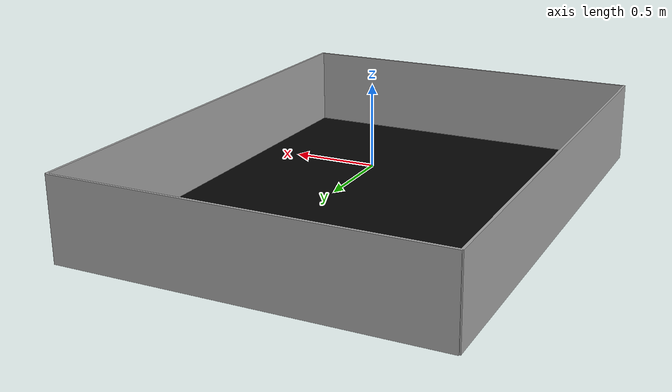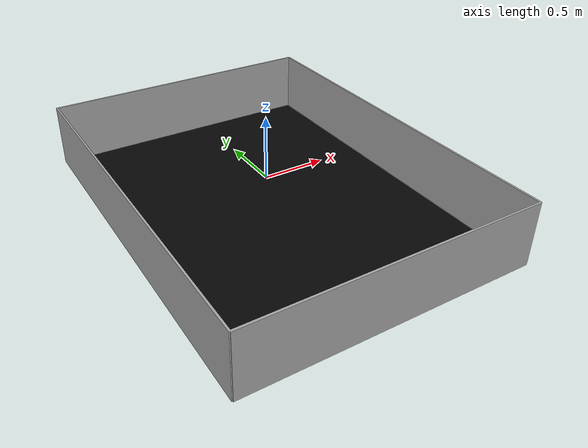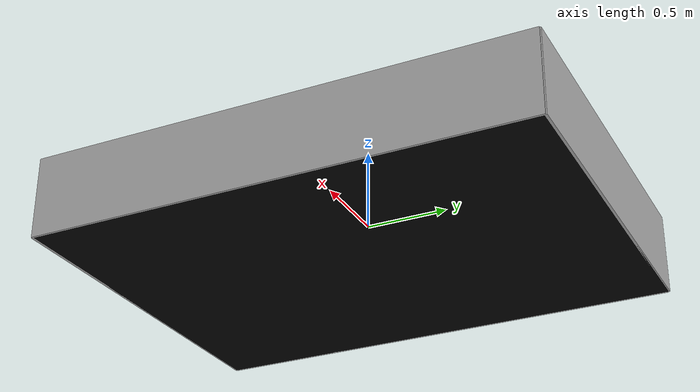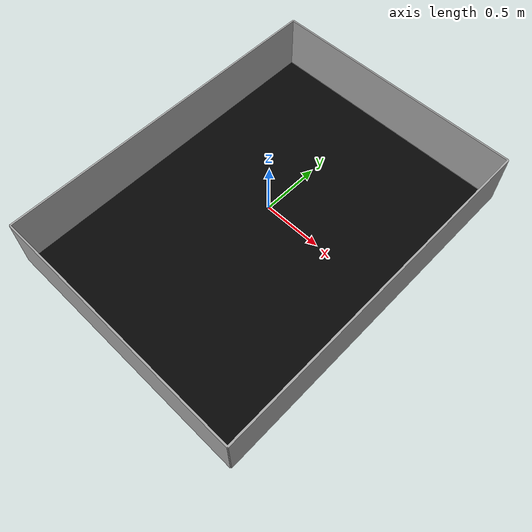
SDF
<?xml version="1.0" ?>
<sdf version='1.4'>
  <model name="fetchit_simple_env">
      <static>1</static>
      <link name='link'>
        <visual name='visual'>
          <geometry>
            <mesh>
              <uri>model://nec0115a_arena/meshes/nec0115a_arena.dae</uri>
              <scale>1 1 1</scale>
            </mesh>
          </geometry>
        </visual>
        <collision name='collision'>
          <geometry>
            <mesh>
              <uri>model://nec0115a_arena/meshes/nec0115a_arena.dae</uri>
              <scale>1 1 1</scale>
            </mesh>
          </geometry>
          <surface>
            <friction>
              <ode>
                <mu>30.0</mu>
                <mu2>30.0</mu2>
              </ode>
            </friction>
            <contact>
              <ode>
                <soft_cfm>0</soft_cfm>
    	          <soft_erp>0.2</soft_erp>
    	          <kp>1e+13</kp>
    	          <kd>1</kd>
    	          <max_vel>0.01</max_vel>
    	          <min_depth>0</min_depth>
              </ode>
            </contact>
          </surface>
        </collision>
        <velocity_decay>
          <linear>0.000000</linear>
          <angular>0.000000</angular>
        </velocity_decay>
        <self_collide>0</self_collide>
        <kinematic>0</kinematic>
        <gravity>1</gravity>
      </link>
  </model>
</sdf>
